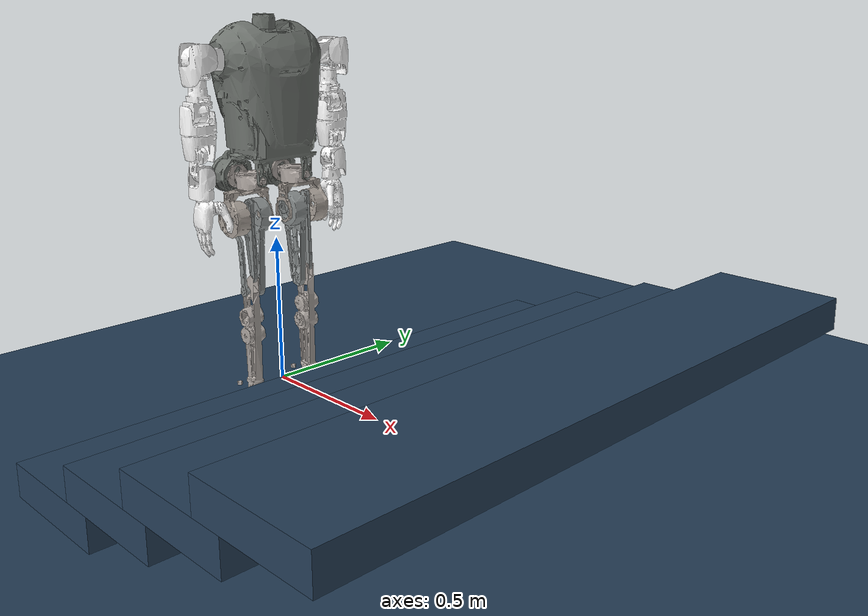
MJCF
<mujoco model="kuavo scene">
  <include file="biped_s40.xml"/>

  <statistic center="0 0 1" extent="1.8"/>

  <visual>
    <headlight diffuse="0.6 0.6 0.6" ambient="0.3 0.3 0.3" specular="0 0 0"/>
    <rgba haze="0.15 0.25 0.35 1"/>
    <global azimuth="160" elevation="-20"/>
  </visual>

  <asset>
    <texture type="skybox" builtin="gradient" rgb1="0.3 0.5 0.7" rgb2="0 0 0" width="512" height="3072"/>
    <texture type="2d" name="groundplane" builtin="checker" mark="edge" rgb1="0.2 0.3 0.4" rgb2="0.1 0.2 0.3"
      markrgb="0.8 0.8 0.8" width="300" height="300"/>
    <material name="groundplane" texture="groundplane" texuniform="true" texrepeat="5 5" reflectance="0.2"/>
  </asset>

  <worldbody>
    <light pos="0 0 3.5" dir="0 0 -1" directional="true"/>
    <geom name="floor" size="0 0 0.05" type="plane" material="groundplane"/>
    <geom name="stage1" type="box" size="0.2 1 0.05" pos="0.4 0 0.05" material="groundplane"/>
    <geom name="stage2" type="box" size="0.2 1 0.05" pos="0.7 0 0.15" material="groundplane"/>
    <geom name="stage3" type="box" size="0.2 1 0.05" pos="1.0 0 0.25" material="groundplane"/>
    <geom name="stage4" type="box" size="0.2 1 0.05" pos="1.3 0 0.35" material="groundplane"/>
  </worldbody>

  <keyframe>
    <key name="home"
      qpos="
    0 0 0.98
    1 0 0 0
    0 0 0 0 0 0
    0 0 0 0 0 0
    0 0 0 0 0 0 0
    0 0 0 0 0 0 0"/>
  </keyframe>

</mujoco>

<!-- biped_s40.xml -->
<mujoco model="biped_s4">
  <compiler angle="radian" meshdir="./meshes_s40/"/>
  <size njmax="500" nconmax="100" />
  <asset>
    <texture type="skybox" builtin="gradient" rgb1="0.4 0.6 0.8" width="128" height="128"/>
    <texture name="grid" type="2d" builtin="checker" rgb1=".1 .2 .3" rgb2=".2 .3 .4" width="300" height="300"/>
    <material name="grid" texture="grid" texrepeat="8 8" reflectance=".1"/>
    <mesh name="torso" file="torso.obj"/>
    <mesh name="l_leg_roll" file="l_leg_roll.obj"/>
    <mesh name="l_leg_yaw" file="l_leg_yaw.obj"/>
    <mesh name="l_leg_pitch" file="l_leg_pitch.obj"/>
    <mesh name="l_knee" file="l_knee.obj"/>
    <mesh name="l_foot_pitch" file="l_foot_pitch.obj"/>
    <mesh name="l_foot_roll" file="l_foot_roll.obj"/>
    <mesh name="r_leg_roll" file="r_leg_roll.obj"/>
    <mesh name="r_leg_yaw" file="r_leg_yaw.obj"/>
    <mesh name="r_leg_pitch" file="r_leg_pitch.obj"/>
    <mesh name="r_knee" file="r_knee.obj"/>
    <mesh name="r_foot_pitch" file="r_foot_pitch.obj"/>
    <mesh name="r_foot_roll" file="r_foot_roll.obj"/>
    <mesh name="l_arm_pitch" file="l_arm_pitch.obj"/>
    <mesh name="l_arm_roll" file="l_arm_roll.obj"/>
    <mesh name="l_arm_yaw" file="l_arm_yaw.obj"/>
    <mesh name="l_forearm_pitch" file="l_forearm_pitch.obj"/>
    <mesh name="l_hand_yaw" file="l_hand_yaw.obj"/>
    <mesh name="l_hand_pitch" file="l_hand_pitch.obj"/>
    <mesh name="l_hand_roll" file="l_hand_roll.obj"/>
    <mesh name="r_arm_pitch" file="r_arm_pitch.obj"/>
    <mesh name="r_arm_roll" file="r_arm_roll.obj"/>
    <mesh name="r_arm_yaw" file="r_arm_yaw.obj"/>
    <mesh name="r_forearm_pitch" file="r_forearm_pitch.obj"/>
    <mesh name="r_hand_yaw" file="r_hand_yaw.obj"/>
    <mesh name="r_hand_pitch" file="r_hand_pitch.obj"/>
    <mesh name="r_hand_roll" file="r_hand_roll.obj"/>
  </asset>
  <worldbody>
    <body name="base_link" pos="0 0 0.78">
      <freejoint/>
      <inertial pos="0.0 0.0 0.12722577" quat="1.00000  0.00000  0.00002 -0.00003" mass="25.10783" diaginertia="0.62588371 0.56247677 0.20014604" />
      <geom type="mesh" contype="0" conaffinity="0" group="1" rgba="0.43137 0.45098 0.43137 1" mesh="torso"/>
      <geom type="mesh" rgba="0.75294 0.75294 0.75294 1" mesh="torso" />
      <site name="imu" pos="0 0 0"/>
      <body name="leg_l1_link" pos="-0.139 0.088087 -0.065549">
        <inertial pos="0.0661423 -1.19e-06 -0.00862806" quat="-0.00036611 0.685786 0.000388541 0.727803" mass="1.53801" diaginertia="0.00367033 0.00282649 0.00188822"/>
        <joint name="leg_l1_joint" pos="0 0 0" axis="1 0 0" range="-0.31 0.66" actuatorfrcrange="-85 85" damping='0.2' />
        <geom type="mesh" contype="0" conaffinity="0" group="1" density="0" rgba="0.6902 0.65882 0.63922 1" mesh="l_leg_roll"/>
        <body name="leg_l2_link" pos="0.1365 -0.0010866 -0.033901">
          <inertial pos="0 0.046104 -0.132561" quat="0.406465 0.913665 0.00146124 -0.000707497" mass="1.60097" diaginertia="0.0069836 0.00577369 0.00365952"/>
          <joint name="leg_l2_joint" pos="0 0 0" axis="0 0 1" range="-0.52 1.04" actuatorfrcrange="-60 60" damping='0.2' />
          <geom type="mesh" contype="0" conaffinity="0" group="1" density="0" rgba="0.65098 0.61961 0.58824 1" mesh="l_leg_yaw"/>
          <body name="leg_l3_link" pos="0 0.094 -0.09">
            <inertial pos="-0.00644903 -0.0981356 -0.0535761" quat="0.680972 -0.0265435 0.0402869 0.730718" mass="2.46657" diaginertia="0.0233349 0.022619 0.00397939"/>
            <joint name="leg_l3_joint" pos="0 0 0" axis="0 1 0" range="-1.83 1.04" actuatorfrcrange="-85 85" damping='0.2' />
            <geom type="mesh" contype="0" conaffinity="0" group="1" density="0" rgba="0.52941 0.54902 0.54902 1" mesh="l_leg_pitch"/>
            <body name="leg_l4_link" pos="0.004136 -0.06635 -0.24997">
              <inertial pos="0.00080045 -4.225e-05 -0.120497" quat="0.708481 -0.000629386 -0.0108666 0.705646" mass="1.62912" diaginertia="0.013595 0.0134393 0.000915523"/>
              <joint name="leg_l4_joint" pos="0 0 0" axis="0 1 0" range="0 2.18" actuatorfrcrange="-85 85" damping='0.2' />
              <geom type="mesh" contype="0" conaffinity="0" group="1" density="0" rgba="0.68627 0.65882 0.63922 1" mesh="l_knee"/>
              <body name="leg_l5_link" pos="0 -0.0022 -0.346">
                <inertial pos="0 -0.0209998 0" quat="0.5 0.5 -0.5 0.5" mass="0.0544445" diaginertia="7.28e-06 4.11e-06 4.11e-06"/>
                <joint name="leg_l5_joint" pos="0 0 0" axis="0 1 0" range="-0.61 0.52" actuatorfrcrange="-36 36" damping='0.2'/>
                <geom type="mesh" contype="0" conaffinity="0" group="1" density="0" rgba="0.6902 0.65882 0.63922 1" mesh="l_foot_pitch"/>
                <body name="leg_l6_link">
                  <inertial pos="-0.0355077 9.71466e-06 -0.0272597" quat="-0.000229205 0.628048 -0.000281424 0.778175" mass="0.470217" diaginertia="0.00146681 0.00133526 0.000364416"/>
                  <joint name="leg_l6_joint" pos="0 0 0" axis="1 0 0" range="-0.61 0.52" actuatorfrcrange="-36 36" damping='0.2' />
                  <geom type="mesh" contype="0" conaffinity="0" group="1" density="0" rgba="0.6902 0.65882 0.63922 1" mesh="l_foot_roll"/>
                  <geom size="0.005" pos="-0.09 0.05 -0.0465" contype="0" conaffinity="0" group="1" density="0" rgba="0.6902 0.65882 0.63922 1"/>
                  <geom size="0.005" pos="-0.09 0.05 -0.0465" rgba="0.6902 0.65882 0.63922 1"/>
                  <geom size="0.005" pos="-0.09 -0.05 -0.0465" contype="0" conaffinity="0" group="1" density="0" rgba="0.6902 0.65882 0.63922 1"/>
                  <geom size="0.005" pos="-0.09 -0.05 -0.0465" rgba="0.6902 0.65882 0.63922 1"/>
                  <geom size="0.005" pos="0.15 0.05 -0.0465" contype="0" conaffinity="0" group="1" density="0" rgba="0.6902 0.65882 0.63922 1"/>
                  <geom size="0.005" pos="0.15 0.05 -0.0465" rgba="0.6902 0.65882 0.63922 1"/>
                  <geom size="0.005" pos="0.15 -0.05 -0.0465" contype="0" conaffinity="0" group="1" density="0" rgba="0.6902 0.65882 0.63922 1"/>
                  <geom size="0.005" pos="0.15 -0.05 -0.0465" rgba="0.6902 0.65882 0.63922 1"/>
                  <geom type="box" size="0.12 0.05 0.005" pos="0.03 0 -0.0465" contype="1" conaffinity="1" group="1" density="0" rgba="0.1 0.6 0.1 0.2"/>
                </body>
              </body>
            </body>
          </body>
        </body>
      </body>
      <body name="leg_r1_link" pos="-0.139 -0.088087 -0.065549">
        <inertial pos="0.0661423 1.19e-06 -0.00862806" quat="0.000366114 0.685786 -0.000388545 0.727803" mass="1.53801" diaginertia="0.00367033 0.00282648 0.00188822"/>
        <joint name="leg_r1_joint" pos="0 0 0" axis="1 0 0" range="-0.6629 0.314" actuatorfrcrange="-85 85" damping='0.2' />
        <geom type="mesh" contype="0" conaffinity="0" group="1" density="0" rgba="0.6902 0.65882 0.63922 1" mesh="r_leg_roll"/>
        <body name="leg_r2_link" pos="0.1365 0.0010866 -0.033901">
          <inertial pos="4.661e-05 -0.0461036 -0.132574" quat="0.928414 0.371529 0.00156279 -0.00347123" mass="1.60097" diaginertia="0.00520443 0.00457962 0.00331423"/>
          <joint name="leg_r2_joint" pos="0 0 0" axis="0 0 1" range="-1.04 0.52" actuatorfrcrange="-60 60" damping='0.2' />
          <geom type="mesh" contype="0" conaffinity="0" group="1" density="0" rgba="0.65098 0.619608 0.588235 1" mesh="r_leg_yaw"/>
          <body name="leg_r3_link" pos="0 -0.094 -0.09">
            <inertial pos="-0.00644903 0.0981356 -0.0535761" quat="0.782763 0.0509103 -0.043864 0.618681" mass="2.46657" diaginertia="0.0236078 0.0224895 0.00397676"/>
            <joint name="leg_r3_joint" pos="0 0 0" axis="0 1 0" range="-1.83 1.04" actuatorfrcrange="-85 85" damping='0.2' />
            <geom type="mesh" contype="0" conaffinity="0" group="1" density="0" rgba="0.529412 0.54902 0.54902 1" mesh="r_leg_pitch"/>
            <body name="leg_r4_link" pos="0.004136 0.06635 -0.24997">
              <inertial pos="0.00080045 4.225e-05 -0.120497" quat="0.705646 -0.0108666 -0.000629386 0.708481" mass="1.62912" diaginertia="0.013595 0.0134393 0.000915523"/>
              <joint name="leg_r4_joint" pos="0 0 0" axis="0 1 0" range="0 2.18" actuatorfrcrange="-85 85" damping='0.2' />
              <geom type="mesh" contype="0" conaffinity="0" group="1" density="0" rgba="0.686275 0.658824 0.639216 1" mesh="r_knee"/>
              <body name="leg_r5_link" pos="0 0.0022 -0.346">
                <inertial pos="0 0.0210002 0" quat="0.5 0.5 -0.5 0.5" mass="0.0544445" diaginertia="7.28e-06 4.11e-06 4.11e-06"/>
                <joint name="leg_r5_joint" pos="0 0 0" axis="0 1 0" range="-0.61 0.52" actuatorfrcrange="-36 36" damping='0.2' />
                <geom type="mesh" contype="0" conaffinity="0" group="1" density="0" rgba="0.690196 0.658824 0.639216 1" mesh="r_foot_pitch"/>
                <body name="leg_r6_link">
                  <inertial pos="-0.0355078 -9.65506e-06 -0.0272597" quat="0.00022933 0.628048 0.00028129 0.778175" mass="0.470216" diaginertia="0.0014668 0.00133526 0.000364406"/>
                  <joint name="leg_r6_joint" pos="0 0 0" axis="1 0 0" range="-0.52 0.61" actuatorfrcrange="-36 36" damping='0.2' />
                  <geom type="mesh" contype="0" conaffinity="0" group="1" density="0" rgba="0.690196 0.658824 0.639216 1" mesh="r_foot_roll"/>
                  <geom size="0.005" pos="-0.09 0.05 -0.0465" contype="0" conaffinity="0" group="1" density="0" rgba="0.690196 0.658824 0.639216 1"/>
                  <geom size="0.005" pos="-0.09 0.05 -0.0465" rgba="0.690196 0.658824 0.639216 1"/>
                  <geom size="0.005" pos="-0.09 -0.05 -0.0465" contype="0" conaffinity="0" group="1" density="0" rgba="0.690196 0.658824 0.639216 1"/>
                  <geom size="0.005" pos="-0.09 -0.05 -0.0465" rgba="0.690196 0.658824 0.639216 1"/>
                  <geom size="0.005" pos="0.15 0.05 -0.0465" contype="0" conaffinity="0" group="1" density="0" rgba="0.690196 0.658824 0.639216 1"/>
                  <geom size="0.005" pos="0.15 0.05 -0.0465" rgba="0.690196 0.658824 0.639216 1"/>
                  <geom size="0.005" pos="0.15 -0.05 -0.0465" contype="0" conaffinity="0" group="1" density="0" rgba="0.690196 0.658824 0.639216 1"/>
                  <geom size="0.005" pos="0.15 -0.05 -0.0465" rgba="0.690196 0.658824 0.639216 1"/>
                  <geom type="box" size="0.12 0.05 0.005" pos="0.03 0 -0.0465" contype="1" conaffinity="1" group="1" density="0" rgba="0.1 0.6 0.1 0.2"/>
                </body>
              </body>
            </body>
          </body>
        </body>
      </body>
      <body name="zarm_l1_link" pos="-0.0175476 0.2547 0.3245">
        <inertial pos="0.0146835 -0.0166604 -6.82857e-05" quat="0.696586 0.712206 -0.0625859 -0.0601207" mass="0.794" diaginertia="0.000271947 0.000196224 0.000121256"/>
        <joint name="zarm_l1_joint" pos="0 0 0" axis="0 1 0" range="-2.0933 0.5233" actuatorfrcrange="-60 60" damping="0.2" />
        <geom type="mesh" contype="0" conaffinity="0" group="1" density="0" rgba="1 1 1 1" mesh="l_arm_pitch"/>
        <body name="zarm_l2_link">
          <inertial pos="0.0222873 0.0156946 -0.0202262" quat="0.398328 0.58059 0.26378 0.659295" mass="0.20735" diaginertia="0.000283338 0.000217951 0.000157462"/>
          <joint name="zarm_l2_joint" pos="0 0 0" axis="1 0 0" range="-0.3489 2.0933" actuatorfrcrange="-82.8 82.8" damping="0.2" />
          <geom type="mesh" contype="0" conaffinity="0" group="1" density="0" rgba="1 1 1 1" mesh="l_arm_roll"/>
          <body name="zarm_l3_link">
            <inertial pos="6.1694e-05 0.00525815 -0.128822" quat="0.237126 0.666158 0.237177 0.666147" mass="1.120632" diaginertia="9.38963e-05 7.96873e-05 7.00576e-05"/>
            <joint name="zarm_l3_joint" pos="0 0 0" axis="0 0 1" range="-1.57 1.57" actuatorfrcrange="-60 60" damping="0.2" />
            <geom type="mesh" contype="0" conaffinity="0" group="1" density="0" rgba="1 1 1 1" mesh="l_arm_yaw"/>
            <body name="zarm_l4_link" pos="0 0 -0.1636">
              <inertial pos="-1.42819e-05 0.00938314 -0.0522688" quat="0.632873 0.313955 0.634285 0.313985" mass="0.395825" diaginertia="0.00013362 0.000113739 9.55807e-05"/>
              <joint name="zarm_l4_joint" pos="0 0 0" axis="0 1 0" range="-2.0933 0" actuatorfrcrange="-60 60" damping="0.2" />
              <geom type="mesh" contype="0" conaffinity="0" group="1" density="0" rgba="1 1 1 1" mesh="l_forearm_pitch"/>
              <body name="zarm_l5_link" pos="0 0 -0.19105">
                <inertial pos="0.000113133 0.00969228 0.0817961" quat="0.493085 0.506908 0.492087 0.507703" mass="0.380792" diaginertia="0.000122264 8.44608e-05 7.64924e-05"/>
                <joint name="zarm_l5_joint" pos="0 0 0" axis="0 0 1" range="-1.657 1.657" actuatorfrcrange="-6 6" damping="0.2" />
                <geom type="mesh" contype="0" conaffinity="0" group="1" density="0" rgba="1 1 1 1" mesh="l_hand_yaw"/>
                <body name="zarm_l6_link">
                  <inertial pos="0.0081061 0.00489663 0.00622489" quat="0.972746 -0.202646 -0.0967872 0.0577326" mass="0.376651" diaginertia="4.90153e-05 3.61802e-05 2.19136e-05"/>
                  <joint name="zarm_l6_joint" pos="0 0 0" axis="0 1 0" range="-1.657 1.657" actuatorfrcrange="-6 6" damping="0.2" />
                  <geom type="mesh" contype="0" conaffinity="0" group="1" density="0" rgba="1 1 1 1" mesh="l_hand_pitch"/>
                  <body name="zarm_l7_link">
                    <inertial pos="0.00556925 0.00646694 -0.0826632" quat="0.349337 0.589226 0.263714 0.67914" mass="0.704669" diaginertia="0.000125371 0.000104468 8.03788e-05"/>
                    <joint name="zarm_l7_joint" pos="0 0 0" axis="1 0 0" range="-1.57 1.57" actuatorfrcrange="-6 6" damping="0.2" />
                    <geom type="mesh" contype="0" conaffinity="0" group="1" density="0" rgba="1 1 1 1" mesh="l_hand_roll"/>
                    <geom size="0.005" pos="0 0 -0.12"/>
                  </body>
                </body>
              </body>
            </body>
          </body>
        </body>
      </body>
      <body name="zarm_r1_link" pos="-0.0175476 -0.2547 0.3245">
        <inertial pos="0.0146744 0.0168298 -8.16712e-05" quat="0.712375 0.696324 0.0605536 0.0631598" mass="0.794" diaginertia="0.000271946 0.000196219 0.000121103"/>
        <joint name="zarm_r1_joint" pos="0 0 0" axis="0 1 0" range="-2.0933 0.5233" actuatorfrcrange="-60 60" damping="0.2" />
        <geom type="mesh" contype="0" conaffinity="0" group="1" density="0" rgba="1 1 1 1" mesh="r_arm_pitch"/>
        <body name="zarm_r2_link">
          <inertial pos="0.0223009 -0.015695 -0.0202308" quat="0.65931 0.264022 0.580473 0.398313" mass="0.20735" diaginertia="0.000283519 0.000218099 0.000157689"/>
          <joint name="zarm_r2_joint" pos="0 0 0" axis="1 0 0" range="-2.0933 0.3489" actuatorfrcrange="-82.8 82.8" damping="0.2" />
          <geom type="mesh" contype="0" conaffinity="0" group="1" density="0" rgba="1 1 1 1" mesh="r_arm_roll"/>
          <body name="zarm_r3_link">
            <inertial pos="-4.82749e-05 -0.00525815 -0.128822" quat="-0.237177 0.666147 -0.237126 0.666158" mass="1.120632" diaginertia="9.38963e-05 7.96873e-05 7.00576e-05"/>
            <joint name="zarm_r3_joint" pos="0 0 0" axis="0 0 1" range="-1.57 1.57" actuatorfrcrange="-60 60" damping="0.2" />
            <geom type="mesh" contype="0" conaffinity="0" group="1" density="0" rgba="1 1 1 1" mesh="r_arm_yaw"/>
            <body name="zarm_r4_link" pos="0 0 -0.1636">
              <inertial pos="-0.000127233 -0.00951603 -0.0522688" quat="0.314696 0.632501 0.314725 0.633922" mass="0.395825" diaginertia="0.000133455 0.000113904 9.55807e-05"/>
              <joint name="zarm_r4_joint" pos="0 0 0" axis="0 1 0" range="-2.0933 0" actuatorfrcrange="-60 60" damping="0.2" />
              <geom type="mesh" contype="0" conaffinity="0" group="1" density="0" rgba="1 1 1 1" mesh="r_forearm_pitch"/>
              <body name="zarm_r5_link" pos="0 0 -0.19105">
                <inertial pos="-0.000113133 -0.00974484 0.0817961" quat="0.506908 0.493085 0.507703 0.492087" mass="0.380792" diaginertia="0.000122264 8.44608e-05 7.64924e-05"/>
                <joint name="zarm_r5_joint" pos="0 0 0" axis="0 0 1" range="-1.657 1.657" actuatorfrcrange="-6 6" damping="0.2" />
                <geom type="mesh" contype="0" conaffinity="0" group="1" density="0" rgba="1 1 1 1" mesh="r_hand_yaw"/>
                <body name="zarm_r6_link">
                  <inertial pos="0.00735987 -0.00475238 0.00605888" quat="0.97227 0.205866 -0.0962427 -0.0552063" mass="0.376651" diaginertia="4.89785e-05 3.6108e-05 2.20226e-05"/>
                  <joint name="zarm_r6_joint" pos="0 0 0" axis="0 1 0" range="-1.657 1.657" actuatorfrcrange="-6 6" damping="0.2" />
                  <geom type="mesh" contype="0" conaffinity="0" group="1" density="0" rgba="1 1 1 1" mesh="r_hand_pitch"/>
                  <body name="zarm_r7_link">
                    <inertial pos="0.0045897 -0.0058632 -0.0836701" quat="0.682455 0.258192 0.586794 0.351091" mass="0.704669" diaginertia="0.000246474 0.000204705 0.000159601"/>
                    <joint name="zarm_r7_joint" pos="0 0 0" axis="1 0 0" range="-1.57 1.57" actuatorfrcrange="-6 6" damping="0.2" />
                    <geom type="mesh" contype="0" conaffinity="0" group="1" density="0" rgba="1 1 1 1" mesh="r_hand_roll"/>
                    <geom size="0.005" pos="0 0 -0.12"/>
                  </body>
                </body>
              </body>
            </body>
          </body>
        </body>
      </body>
    </body>
  </worldbody>
  <actuator>
        <motor gear="1" joint="leg_l1_joint" name="leg_l1_motor" ctrllimited="true"  ctrlrange='-150 150'/>
        <motor gear="1" joint="leg_l2_joint" name="leg_l2_motor" ctrllimited="true"  ctrlrange='-150 150'/>
        <motor gear="1" joint="leg_l3_joint" name="leg_l3_motor" ctrllimited="true"  ctrlrange='-200 200'/>
        <motor gear="1" joint="leg_l4_joint" name="leg_l4_motor" ctrllimited="true"  ctrlrange='-200 200'/>
        <motor gear="1" joint="leg_l5_joint" name="leg_l5_motor" ctrllimited="true"  ctrlrange='-90 90'/>
        <motor gear="1" joint="leg_l6_joint" name="leg_l6_motor" ctrllimited="true"  ctrlrange='-90 90'/>

        <motor gear="1" joint="leg_r1_joint" name="leg_r1_motor" ctrllimited="true"  ctrlrange='-150 150'/>
        <motor gear="1" joint="leg_r2_joint" name="leg_r2_motor" ctrllimited="true"  ctrlrange='-150 150'/>
        <motor gear="1" joint="leg_r3_joint" name="leg_r3_motor" ctrllimited="true"  ctrlrange='-200 200'/>
        <motor gear="1" joint="leg_r4_joint" name="leg_r4_motor" ctrllimited="true"  ctrlrange='-200 200'/>
        <motor gear="1" joint="leg_r5_joint" name="leg_r5_motor" ctrllimited="true"  ctrlrange='-90 90'/>
        <motor gear="1" joint="leg_r6_joint" name="leg_r6_motor" ctrllimited="true"  ctrlrange='-90 90'/>

        <motor gear="1" joint="zarm_l1_joint" name="zarm_l1_motor" ctrllimited="true"  ctrlrange='-150 150'/>
        <motor gear="1" joint="zarm_l2_joint" name="zarm_l2_motor" ctrllimited="true"  ctrlrange='-150 150'/>
        <motor gear="1" joint="zarm_l3_joint" name="zarm_l3_motor" ctrllimited="true"  ctrlrange='-200 200'/>
        <motor gear="1" joint="zarm_l4_joint" name="zarm_l4_motor" ctrllimited="true"  ctrlrange='-200 200'/>
        <motor gear="1" joint="zarm_l5_joint" name="zarm_l5_motor" ctrllimited="true"  ctrlrange='-90 90'/>
        <motor gear="1" joint="zarm_l6_joint" name="zarm_l6_motor" ctrllimited="true"  ctrlrange='-90 90'/>
        <motor gear="1" joint="zarm_l7_joint" name="zarm_l7_motor" ctrllimited="true"  ctrlrange='-90 90'/>

        <motor gear="1" joint="zarm_r1_joint" name="zarm_r1_motor" ctrllimited="true"  ctrlrange='-150 150'/>
        <motor gear="1" joint="zarm_r2_joint" name="zarm_r2_motor" ctrllimited="true"  ctrlrange='-150 150'/>
        <motor gear="1" joint="zarm_r3_joint" name="zarm_r3_motor" ctrllimited="true"  ctrlrange='-200 200'/>
        <motor gear="1" joint="zarm_r4_joint" name="zarm_r4_motor" ctrllimited="true"  ctrlrange='-200 200'/>
        <motor gear="1" joint="zarm_r5_joint" name="zarm_r5_motor" ctrllimited="true"  ctrlrange='-90 90'/>
        <motor gear="1" joint="zarm_r6_joint" name="zarm_r6_motor" ctrllimited="true"  ctrlrange='-90 90'/>
        <motor gear="1" joint="zarm_r7_joint" name="zarm_r7_motor" ctrllimited="true"  ctrlrange='-90 90'/>
  </actuator>
  <sensor>
      <accelerometer name="BodyAcc" site="imu"/>
      <velocimeter name="BodyVel" site="imu"/>
      <gyro name="BodyGyro" site="imu"/>
      <framepos name="BodyPos" objtype="site" objname="imu"/>
      <framequat name="BodyQuat" objtype="site" objname="imu"/>

      <jointpos name="leg_l1_pos" joint="leg_l1_joint"/>
      <jointpos name="leg_l2_pos" joint="leg_l2_joint"/>
      <jointpos name="leg_l3_pos" joint="leg_l3_joint"/>
      <jointpos name="leg_l4_pos" joint="leg_l4_joint"/>
      <jointpos name="leg_l5_pos" joint="leg_l5_joint"/>
      <jointpos name="leg_l6_pos" joint="leg_l6_joint"/>

      <jointpos name="leg_r1_pos" joint="leg_r1_joint"/>
      <jointpos name="leg_r2_pos" joint="leg_r2_joint"/>
      <jointpos name="leg_r3_pos" joint="leg_r3_joint"/>
      <jointpos name="leg_r4_pos" joint="leg_r4_joint"/>
      <jointpos name="leg_r5_pos" joint="leg_r5_joint"/>
      <jointpos name="leg_r6_pos" joint="leg_r6_joint"/>

      <jointpos name="zarm_l1_pos" joint="zarm_l1_joint"/>
      <jointpos name="zarm_l2_pos" joint="zarm_l2_joint"/>
      <jointpos name="zarm_l3_pos" joint="zarm_l3_joint"/>
      <jointpos name="zarm_l4_pos" joint="zarm_l4_joint"/>
      <jointpos name="zarm_l5_pos" joint="zarm_l5_joint"/>
      <jointpos name="zarm_l6_pos" joint="zarm_l6_joint"/>
      <jointpos name="zarm_l7_pos" joint="zarm_l7_joint"/>

      <jointpos name="zarm_r1_pos" joint="zarm_r1_joint"/>
      <jointpos name="zarm_r2_pos" joint="zarm_r2_joint"/>
      <jointpos name="zarm_r3_pos" joint="zarm_r3_joint"/>
      <jointpos name="zarm_r4_pos" joint="zarm_r4_joint"/>
      <jointpos name="zarm_r5_pos" joint="zarm_r5_joint"/>
      <jointpos name="zarm_r6_pos" joint="zarm_r6_joint"/>
      <jointpos name="zarm_r7_pos" joint="zarm_r7_joint"/>

      <jointvel name="leg_l1_vel" joint="leg_l1_joint"/>
      <jointvel name="leg_l2_vel" joint="leg_l2_joint"/>
      <jointvel name="leg_l3_vel" joint="leg_l3_joint"/>
      <jointvel name="leg_l4_vel" joint="leg_l4_joint"/>
      <jointvel name="leg_l5_vel" joint="leg_l5_joint"/>
      <jointvel name="leg_l6_vel" joint="leg_l6_joint"/>

      <jointvel name="leg_r1_vel" joint="leg_r1_joint"/>
      <jointvel name="leg_r2_vel" joint="leg_r2_joint"/>
      <jointvel name="leg_r3_vel" joint="leg_r3_joint"/>
      <jointvel name="leg_r4_vel" joint="leg_r4_joint"/>
      <jointvel name="leg_r5_vel" joint="leg_r5_joint"/>
      <jointvel name="leg_r6_vel" joint="leg_r6_joint"/>

      <jointvel name="zarm_l1_vel" joint="zarm_l1_joint"/>
      <jointvel name="zarm_l2_vel" joint="zarm_l2_joint"/>
      <jointvel name="zarm_l3_vel" joint="zarm_l3_joint"/>
      <jointvel name="zarm_l4_vel" joint="zarm_l4_joint"/>
      <jointvel name="zarm_l5_vel" joint="zarm_l5_joint"/>
      <jointvel name="zarm_l6_vel" joint="zarm_l6_joint"/>
      <jointvel name="zarm_l7_vel" joint="zarm_l7_joint"/>

      <jointvel name="zarm_r1_vel" joint="zarm_r1_joint"/>
      <jointvel name="zarm_r2_vel" joint="zarm_r2_joint"/>
      <jointvel name="zarm_r3_vel" joint="zarm_r3_joint"/>
      <jointvel name="zarm_r4_vel" joint="zarm_r4_joint"/>
      <jointvel name="zarm_r5_vel" joint="zarm_r5_joint"/>
      <jointvel name="zarm_r6_vel" joint="zarm_r6_joint"/>
      <jointvel name="zarm_r7_vel" joint="zarm_r7_joint"/>

  </sensor>
</mujoco>
